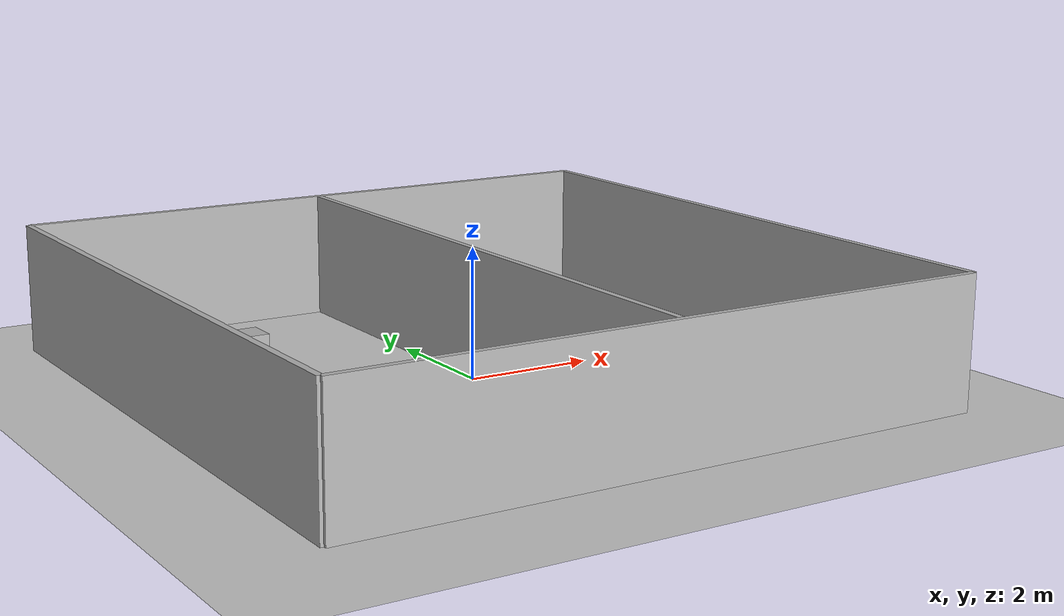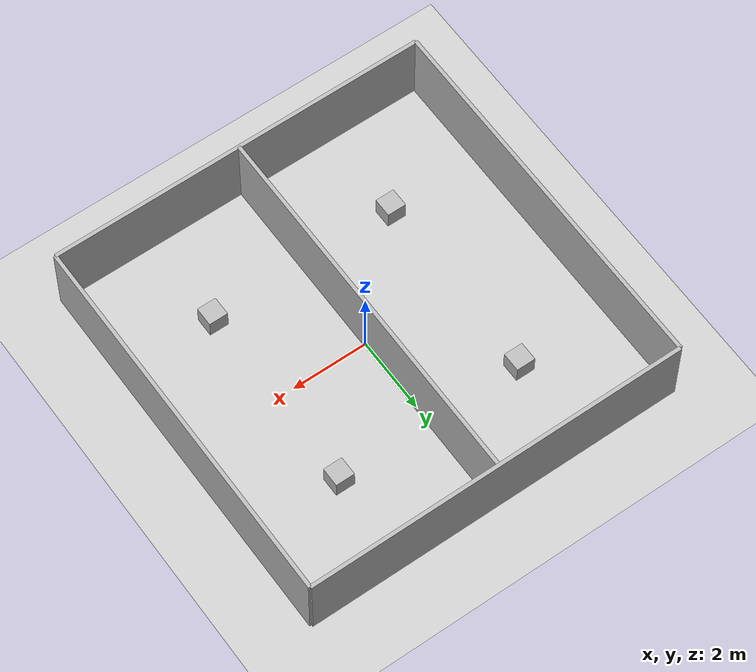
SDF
<sdf version="1.6">
    <world name="bounded_area">
        <include>
            <uri>model://sun</uri>
        </include>
        <include>
            <uri>model://ground_plane</uri>
        </include>
        <!-- Four cardboard walls -->
        <model name="wall1">
            <static>true</static>
            <link name="link">
                <collision name="collision">
                    <geometry>
                        <box><size>10 0.1 2</size></box>
                    </geometry>
                </collision>
                <visual name="visual">
                    <geometry>
                        <box><size>10 0.1 2</size></box>
                    </geometry>
                </visual>
            </link>
            <pose>0 5 1 0 0 0</pose>
        </model>
        <model name="wall2">
            <static>true</static>
            <link name="link">
                <collision name="collision">
                    <geometry>
                        <box><size>10 0.1 2</size></box>
                    </geometry>
                </collision>
                <visual name="visual">
                    <geometry>
                        <box><size>10 0.1 2</size></box>
                    </geometry>
                </visual>
            </link>
            <pose>0 -5 1 0 0 0</pose>
        </model>
        <model name="wall3">
            <static>true</static>
            <link name="link">
                <collision name="collision">
                    <geometry>
                        <box><size>0.1 10 2</size></box>
                    </geometry>
                </collision>
                <visual name="visual">
                    <geometry>
                        <box><size>0.1 10 2</size></box>
                    </geometry>
                </visual>
            </link>
            <pose>5 0 1 0 0 0</pose>
        </model>
        <model name="wall4">
            <static>true</static>
            <link name="link">
                <collision name="collision">
                    <geometry>
                        <box><size>0.1 10 2</size></box>
                    </geometry>
                </collision>
                <visual name="visual">
                    <geometry>
                        <box><size>0.1 10 2</size></box>
                    </geometry>
                </visual>
            </link>
            <pose>-5 0 1 0 0 0</pose>
        </model>

        <!-- Middle wall dividing the region into two -->
        <model name="middle_wall">
            <static>true</static>
            <link name="link">
                <collision name="collision">
                    <geometry>
                        <box><size>0.1 10 2</size></box>
                    </geometry>
                </collision>
                <visual name="visual">
                    <geometry>
                        <box><size>0.1 10 2</size></box>
                    </geometry>
                </visual>
            </link>
            <pose>0 0 1 0 0 0</pose>
        </model>

        <!-- Obstacles on each side of the middle wall -->
        <model name="obstacle1">
            <static>true</static>
            <link name="link">
                <collision name="collision">
                    <geometry>
                        <box><size>0.5 0.5 0.5</size></box>
                    </geometry>
                </collision>
                <visual name="visual">
                    <geometry>
                        <box><size>0.5 0.5 0.5</size></box>
                    </geometry>
                </visual>
            </link>
            <pose>2.5 2.5 0.25 0 0 0</pose>
        </model>
        <model name="obstacle2">
            <static>true</static>
            <link name="link">
                <collision name="collision">
                    <geometry>
                        <box><size>0.5 0.5 0.5</size></box>
                    </geometry>
                </collision>
                <visual name="visual">
                    <geometry>
                        <box><size>0.5 0.5 0.5</size></box>
                    </geometry>
                </visual>
            </link>
            <pose>-2.5 2.5 0.25 0 0 0</pose>
        </model>
        <model name="obstacle3">
            <static>true</static>
            <link name="link">
                <collision name="collision">
                    <geometry>
                        <box><size>0.5 0.5 0.5</size></box>
                    </geometry>
                </collision>
                <visual name="visual">
                    <geometry>
                        <box><size>0.5 0.5 0.5</size></box>
                    </geometry>
                </visual>
            </link>
            <pose>2.5 -2.5 0.25 0 0 0</pose>
        </model>
        <model name="obstacle4">
            <static>true</static>
            <link name="link">
                <collision name="collision">
                    <geometry>
                        <box><size>0.5 0.5 0.5</size></box>
                    </geometry>
                </collision>
                <visual name="visual">
                    <geometry>
                        <box><size>0.5 0.5 0.5</size></box>
                    </geometry>
                </visual>
            </link>
            <pose>-2.5 -2.5 0.25 0 0 0</pose>
        </model>
    </world>
</sdf>
